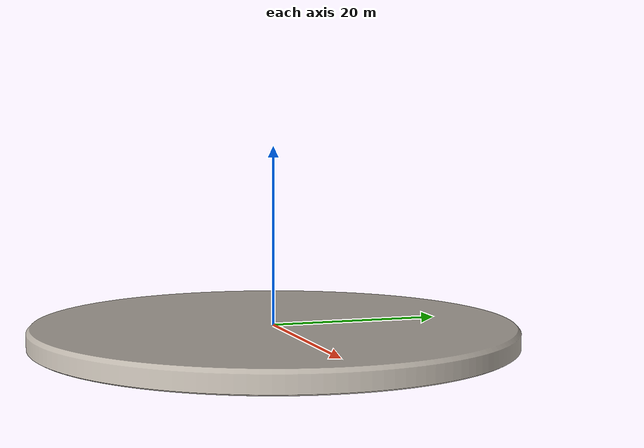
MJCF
<mujoco model="11721_darboard_V4_L3">
  <default>
    <default class="visual">
      <geom group="2" type="mesh" contype="0" conaffinity="0"/>
    </default>
    <default class="collision">
      <geom group="3" type="mesh"/>
    </default>
  </default>
  <asset>
    <texture type="2d" name="dartboard" file="dartboard.png"/>
    <material name="07___Default" texture="dartboard" specular="0.09000000000000001" shininess="0.01"/>
    <mesh file="11721_darboard_V4_L3.obj"/>
  </asset>
  <worldbody>
    <body name="11721_darboard_V4_L3">
      <geom material="07___Default" mesh="11721_darboard_V4_L3" class="visual"/>
      <geom mesh="11721_darboard_V4_L3" class="collision"/>
    </body>
  </worldbody>
</mujoco>
